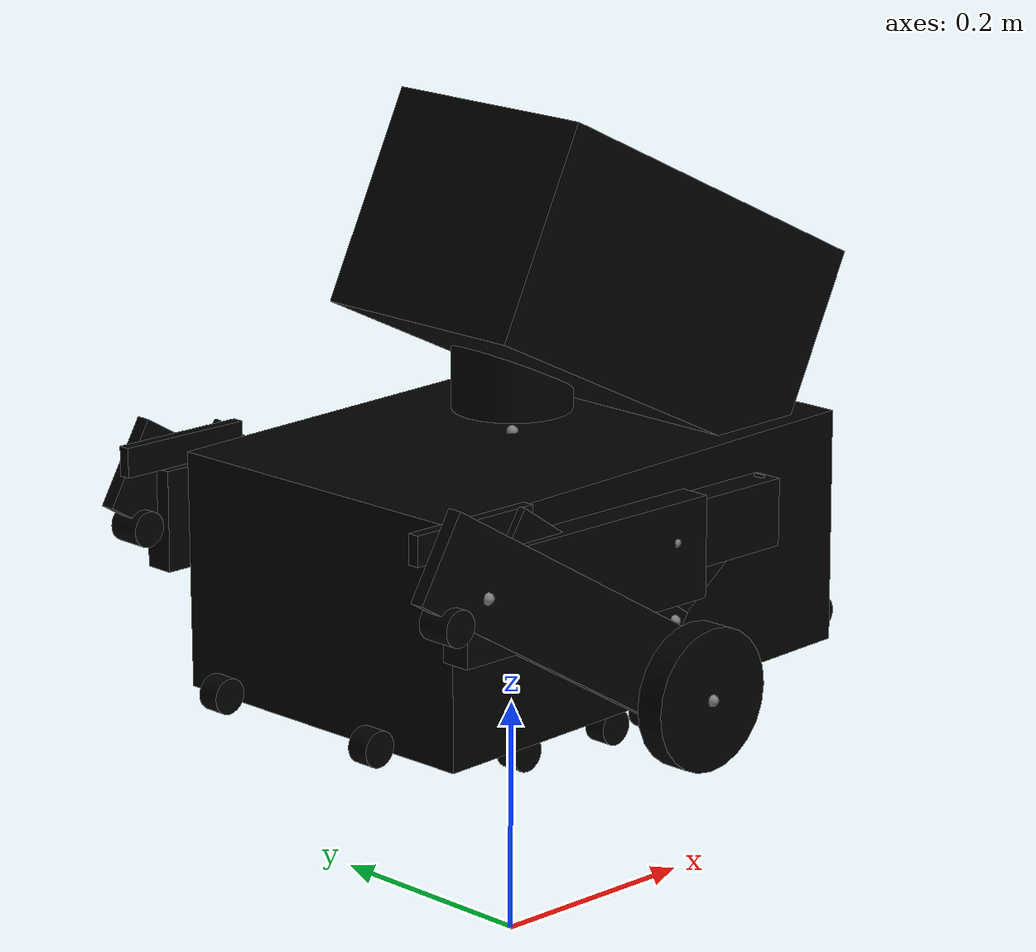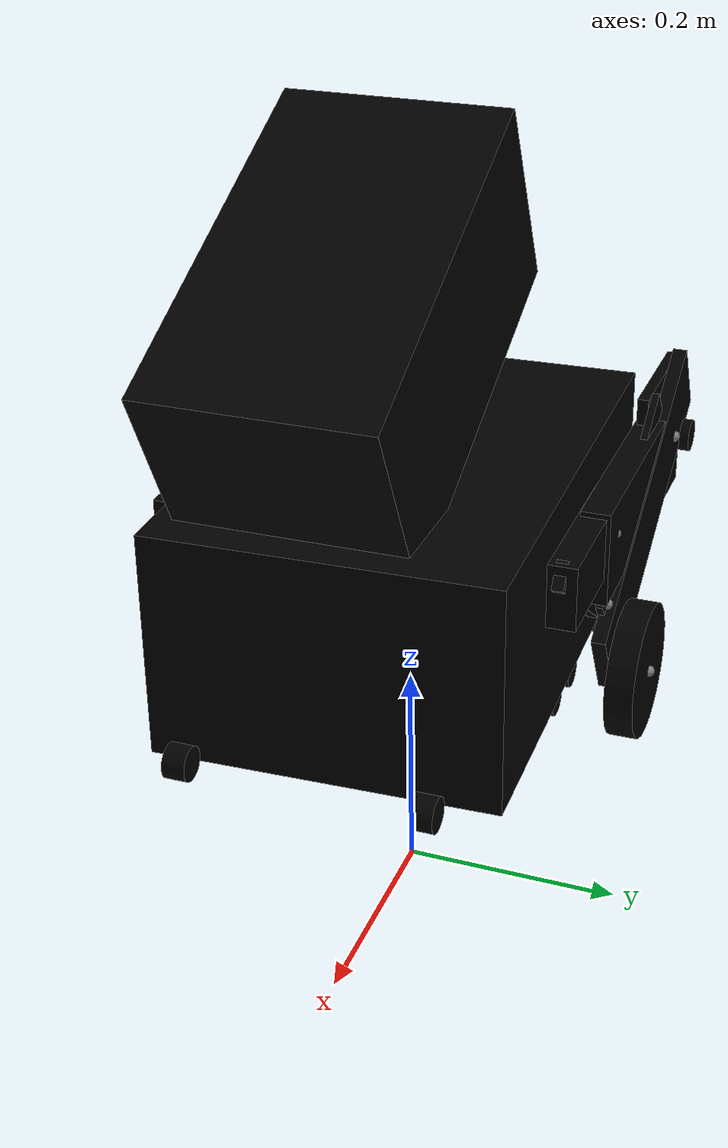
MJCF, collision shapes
<mujoco model="wheelbipeV14_2">
  <!-- Source simulation profile: deterministic midpoints of the source
       startup dynamic-friction ranges for base, wheels and guide rollers. -->
  <default>
    <default class="robot">
      <default class="motor">
        <joint damping="0.01" armature="0.0001" frictionloss="0.0"/>
        <motor />
      </default>
      <default class="visual">
        <geom material="visualgeom" contype="0" conaffinity="0" group="2" />
      </default>
      <default class="collision">
        <geom material="collision_material" condim="3" contype="0" conaffinity="1" priority="1" group="1" solref="0.005 1" solimp="0.99 0.999 1e-05" friction="1 0.01 0.01" />
      </default>
    </default>
  </default>

  <!-- meshdir is also consumed by UniLab's terrain materializer when this
       pure robot description is attached to a generated hfield scene. -->
  <compiler angle="radian" meshdir="../meshes" autolimits="true" />

  <asset>
    <material name="visualgeom" rgba="0.7 0.7 0.7 1" />
    <material name="red" rgba="1 1 1 1" />
    <material name="default_material" rgba="0.7 0.7 0.7 1" />
    <material name="collision_material" rgba="0 0 0 0" />
    <mesh name="base_link.STL" file="../meshes/base_link.STL" />
    <mesh name="gimbal_yaw_link.STL" file="../meshes/gimbal_yaw_link.STL" />
    <mesh name="gimbal_pitch_link.STL" file="../meshes/gimbal_pitch_link.STL" />
    <mesh name="left_front1_link.STL" file="../meshes/left_front1_link.STL" />
    <mesh name="left_front2_link.STL" file="../meshes/left_front2_link.STL" />
    <mesh name="left_front3_link.STL" file="../meshes/left_front3_link.STL" />
    <mesh name="left_front4_link.STL" file="../meshes/left_front4_link.STL" />
    <mesh name="left_rear1_link.STL" file="../meshes/left_rear1_link.STL" />
    <mesh name="left_rear2_link.STL" file="../meshes/left_rear2_link.STL" />
    <mesh name="left_wheel_link.STL" file="../meshes/left_wheel_link.STL" />
    <mesh name="left_spring1_link.STL" file="../meshes/left_spring1_link.STL" />
    <mesh name="left_spring2_link.STL" file="../meshes/left_spring2_link.STL" />
    <mesh name="right_front1_link.STL" file="../meshes/right_front1_link.STL" />
    <mesh name="right_front2_link.STL" file="../meshes/right_front2_link.STL" />
    <mesh name="right_front3_link.STL" file="../meshes/right_front3_link.STL" />
    <mesh name="right_front4_link.STL" file="../meshes/right_front4_link.STL" />
    <mesh name="right_rear1_link.STL" file="../meshes/right_rear1_link.STL" />
    <mesh name="right_rear2_link.STL" file="../meshes/right_rear2_link.STL" />
    <mesh name="right_wheel_link.STL" file="../meshes/right_wheel_link.STL" />
    <mesh name="right_spring1_link.STL" file="../meshes/right_spring1_link.STL" />
    <mesh name="right_spring2_link.STL" file="../meshes/right_spring2_link.STL" />
  </asset>

  <worldbody>
    <body name="base_link" pos="0.00000000 0.00000000 0.38" quat="1 0 0 0" childclass="robot">
      <freejoint name="floating_base" />
      <inertial pos="0.00582119 0.00168176 -0.04109210" mass="15.96301746" fullinertia="0.19890602 0.29839691 0.37398203 -0.00177966 0.00594931 -0.00016768" />
      <geom name="base_link_collision" pos="0.00511110015213 0.00117399997544 -0.045510198921" quat="-0.00240134936757 0.999876547349 0.0140534655443 0.0066048231364" type="box" size="0.22499999404 0.15000000596 0.10000000149" class="collision" friction="0.055 0.01 0.01" />
      <site name="contact_site_base_link" pos="0.00511110015213 0.00117399997544 -0.045510198921" quat="-0.00240134936757 0.999876547349 0.0140534655443 0.0066048231364" type="box" size="0.22499999404 0.15000000596 0.10000000149" rgba="0 0 0 0" />
      <geom name="base_link_visual" pos="0 0 -0.117" quat="1 0 0 0" material="default_material" type="mesh" mesh="base_link.STL" class="visual" />
      <body name="gimbal_yaw_link" pos="0 0 0.05495" quat="1 0 0 0">
        <site name="gimbal_yaw_joint_site" pos="0 0 0" quat="1 0 0 0" />
        <geom name="gimbal_yaw_link_collision" pos="0 0 0.070000000298" quat="1 0 0 0" type="cylinder" size="0.0500000007451 0.0500000007451" class="collision" />
        <site name="contact_site_gimbal_yaw_link" pos="0 0 0.070000000298" quat="1 0 0 0" type="cylinder" size="0.0500000007451 0.0500000007451" rgba="0 0 0 0" />
        <inertial pos="-0.032712 0.039683 0.102088" mass="1.1135894" fullinertia="0.0115811 0.0131184 0.0083629 0.0022103 0.0053499 -0.0031031" />
        <geom name="gimbal_yaw_link_visual" pos="0 0 0" quat="1 0 0 0" material="default_material" type="mesh" mesh="gimbal_yaw_link.STL" class="visual" />
        <body name="gimbal_pitch_link" pos="-0.058485 -0.0553 0.18" quat="1 0 0 0">
          <site name="gimbal_pitch_joint_site" pos="0 0 0" quat="1 0 0 0" />
          <inertial pos="0.077937 0.022206 -0.043928" mass="2.9094813" fullinertia="0.0152198 0.019075 0.0180859 -0.0020655 0.0058831 0.001189" />
          <geom name="gimbal_pitch_link_collision" pos="0.122241601348 0.0276848003268 -0.055365100503" quat="0.974370062351 0 0.224951064887 0" type="box" size="0.17499999702 0.10000000149 0.0912242978811" class="collision" />
          <site name="contact_site_gimbal_pitch_link" pos="0.122241601348 0.0276848003268 -0.055365100503" quat="0.974370062351 0 0.224951064887 0" type="box" size="0.17499999702 0.10000000149 0.0912242978811" rgba="0 0 0 0" />
          <geom name="gimbal_pitch_link_visual" pos="0 0 0" quat="1 0 0 0" material="default_material" type="mesh" mesh="gimbal_pitch_link.STL" class="visual" />
        </body>
      </body>
      <body name="left_front1_link" pos="0 0.1845 0" quat="1 0 0 0">
        <joint name="left_front1_joint" type="hinge" ref="0.0" class="motor" axis="0 1 0" damping="0.0" frictionloss="0.0" armature="0.015795" />
        <site name="left_front1_joint_site" pos="0 0 0" quat="1 0 0 0" />
        <inertial pos="0.02531605 -0.01412400 0.00293202" mass="0.13665924" fullinertia="0.00005570 0.00023381 0.00022127 -0.00003357 -0.00001944 -0.00000389" />
        <geom name="left_front1_link_collision" pos="0.0470402985811 -0.0125000001863 6.40000007479e-06" quat="1 0 0 0" type="box" size="0.0755402967334 0.0125000001863 0.0284599494189" class="collision" />
        <site name="contact_site_left_front1_link" pos="0.0470402985811 -0.0125000001863 6.40000007479e-06" quat="1 0 0 0" type="box" size="0.0755402967334 0.0125000001863 0.0284599494189" rgba="0 0 0 0" />
        <geom name="left_front1_link_visual" pos="0 0 0" quat="1 0 0 0" material="default_material" type="mesh" mesh="left_front1_link.STL" class="visual" />
        <body name="left_front2_link" pos="0.11265 -0.0095 0.013046" quat="1 0 0 0">
          <joint name="left_front2_joint" type="hinge" ref="0.0" class="motor" range="-1 0.1" axis="0 1 0" />
          <site name="left_front2_joint_site" pos="0 0 0" quat="1 0 0 0" />
          <inertial pos="-0.0544 -0.0044715 -0.0399756" quat="0.950204968452 0 -0.311625629663 0" mass="0.0328941" diaginertia="1.42447822782e-06 8.24000017019e-05 8.14755185274e-05" />
          <geom name="left_front2_link_collision" pos="-0.0543931014836 -0.00499999988824 -0.0399704985321" quat="0.671815335751 0.671938318125 -0.220387807429 0.220436534228" type="box" size="0.0798079967499 0.0125171495602 0.00500309979543" class="collision" />
          <site name="contact_site_left_front2_link" pos="-0.0543931014836 -0.00499999988824 -0.0399704985321" quat="0.671815335751 0.671938318125 -0.220387807429 0.220436534228" type="box" size="0.0798079967499 0.0125171495602 0.00500309979543" rgba="0 0 0 0" />
          <geom name="left_front2_link_visual" pos="0 0 0" quat="1 0 0 0" material="default_material" type="mesh" mesh="left_front2_link.STL" class="visual" />
          <body name="left_front3_link" pos="-0.10879 0.0065 -0.079941" quat="1 0 0 0">
            <joint name="left_front3_joint" type="hinge" ref="0.0" class="motor" range="-0.1 1" axis="0 1 0" />
            <site name="left_front3_joint_site" pos="0 0 0" quat="1 0 0 0" />
            <inertial pos="-0.0844609 -0.002949 0.0515978" quat="0.958503782749 0 0.285079836845 0" mass="0.044351" diaginertia="3.15396982842e-06 0.000164299999597 0.000161346019013" />
            <geom name="left_front3_link_collision" pos="-0.0861302986741 -0.00297400006093 0.0506381988525" quat="0.680705428123 -0.67121100005 0.208784772637 0.206215499539" type="box" size="0.110699951649 0.0180859994143 0.00327180000022" class="collision" />
            <site name="contact_site_left_front3_link" pos="-0.0861302986741 -0.00297400006093 0.0506381988525" quat="0.680705428123 -0.67121100005 0.208784772637 0.206215499539" type="box" size="0.110699951649 0.0180859994143 0.00327180000022" rgba="0 0 0 0" />
            <geom name="left_front3_link_visual" pos="0 0 0" quat="1 0 0 0" material="default_material" type="mesh" mesh="left_front3_link.STL" class="visual" />
            <body name="left_front4_link" pos="-0.16505 -0.0065 0.11386" quat="1 0 0 0">
              <joint name="left_front4_joint" type="hinge" ref="0.0" class="motor" range="-2 0.1" axis="0 1 0" />
              <site name="left_front4_joint_site" pos="0 0 0" quat="1 0 0 0" />
              <inertial pos="-0.0483173 -0.0045295 0" quat="1 0 0 0" mass="0.0271098" diaginertia="1.3e-06 3.88e-05 3.79e-05" />
              <geom name="left_front4_link_collision" pos="-0.0483739003539 -0.00499999988824 0" quat="1 0 0 0" type="box" size="0.0607260502875 0.00499999988824 0.0124283498153" class="collision" />
              <site name="contact_site_left_front4_link" pos="-0.0483739003539 -0.00499999988824 0" quat="1 0 0 0" type="box" size="0.0607260502875 0.00499999988824 0.0124283498153" rgba="0 0 0 0" />
              <geom name="left_front4_link_visual" pos="0 0 0" quat="1 0 0 0" material="default_material" type="mesh" mesh="left_front4_link.STL" class="visual" />
            </body>
          </body>
        </body>
      </body>
      <body name="left_rear1_link" pos="0 0.174 0" quat="1 0 0 0">
        <joint name="left_rear1_joint" type="hinge" ref="0.0" class="motor" limited="true" range="-3.14 1" axis="0 1 0" armature="0.015795" damping="0.0" frictionloss="0.0" />
        <site name="left_rear1_joint_site" pos="0 0 0" quat="1 0 0 0" />
        <inertial pos="-0.11878103 -0.00279462 0.00086226" mass="0.38254442" fullinertia="0.00013214 0.00273881 0.00266568 0.00015056 0.00003507 -0.00000111" />
        <geom name="left_rear1_link_collision" pos="-0.0993413999677 0.0010000000475 -0.00973969977349" quat="1 0 0 0" type="box" size="0.132341399789 0.0130000002682 0.0426966995001" class="collision" />
        <site name="contact_site_left_rear1_link" pos="-0.0993413999677 0.0010000000475 -0.00973969977349" quat="1 0 0 0" type="box" size="0.132341399789 0.0130000002682 0.0426966995001" rgba="0 0 0 0" />
        <geom name="left_rear1_link_visual" pos="0 0 0" quat="1 0 0 0" material="default_material" type="mesh" mesh="left_rear1_link.STL" class="visual" />
        <body name="left_rear2_link" pos="-0.21 0.0145 0" quat="1 0 0 0">
          <joint name="left_rear2_joint" type="hinge" ref="0.0" class="motor" range="0 1.2" axis="0 1 0" />
          <site name="left_rear2_joint_site" pos="0 0 0" quat="1 0 0 0" />
          <site name="left_s2r2_rear2_site" pos="0.04758 -0.01405 -0.02292" quat="0.997796329836319 0 0.0663512182644112 0" />
          <inertial pos="0.08464616 -0.00523955 -0.04743407" mass="0.31135718" fullinertia="0.00102346 0.00354846 0.00253867 0.00002545 0.00148132 -0.00001794" />
          <geom name="left_rear2_link_collision" pos="0.0885389968753 -0.00600130017847 -0.0399999991059" quat="0.684954345226 0.678498433009 0.188647251428 -0.186787675956" type="box" size="0.159999996424 0.0391302518547 0.00638655014336" class="collision" />
          <site name="contact_site_left_rear2_link" pos="0.0885389968753 -0.00600130017847 -0.0399999991059" quat="0.684954345226 0.678498433009 0.188647251428 -0.186787675956" type="box" size="0.159999996424 0.0391302518547 0.00638655014336" rgba="0 0 0 0" />
          <geom name="left_rear2_link_visual" pos="0 0 0" quat="1 0 0 0" material="default_material" type="mesh" mesh="left_rear2_link.STL" class="visual" />
          <body name="left_rear2_guide_link" pos="-0.037468 0.0065 -0.014006">
            <joint name="left_rear2_guide_joint" type="hinge" axis="0 1 0" damping="0.01" armature="0.0001" frictionloss="0" />
            <geom name="left_rear2_guide_link_collision" pos="-8.69999985298e-06 -0.0125000001863 0" quat="0.70710682869 0.707106733684 0 0" type="cylinder" size="0.0149999996647 0.0149985002354" class="collision" friction="0.4 0.01 0.01" />
            <site name="contact_site_left_rear2_guide_link" pos="-8.69999985298e-06 -0.0125000001863 0" quat="0.70710682869 0.707106733684 0 0" type="cylinder" size="0.0149999996647 0.0149985002354" rgba="0 0 0 0" />
            <inertial pos="0 -0.0125 0" mass="0.00997679960" diaginertia="0.0000006 0.0000012 0.0000006" />
          </body>
          <body name="left_wheel_link" pos="0.21661 0.03355 -0.12483" quat="1 0 0 0">
            <joint name="left_wheel_joint" type="hinge" ref="0.0" class="motor" axis="0 1 0" damping="0.00" frictionloss="0.0" armature="0.0" />
            <site name="left_wheel_joint_site" pos="0 0 0" quat="1 0 0 0" />
            <inertial pos="0.00015349 -0.02021922 -0.00011469" mass="0.51208444" fullinertia="0.00038955 0.00063306 0.00038893 0.00000081 -0.00000093 -0.00000059" />
            <geom name="left_wheel_link_collision" pos="0 -0.0125000001863 0" quat="0.70710682869 0.707106733684 0 0" type="cylinder" size="0.0599999986589 0.0125000001863" class="collision" friction="0.7 0.01 0.01" />
            <site name="contact_site_left_wheel_link" pos="0 -0.0125000001863 0" quat="0.70710682869 0.707106733684 0 0" type="cylinder" size="0.0599999986589 0.0125000001863" rgba="0 0 0 0" />
            <geom name="left_wheel_link_visual" pos="0 0 0" quat="1 0 0 0" material="default_material" type="mesh" mesh="left_wheel_link.STL" class="visual" />
          </body>
        </body>
        <body name="left_spring1_link" pos="0.0023551 -0.002 -0.044938" quat="1 0 0 0">
          <joint name="left_spring1_joint" type="hinge" ref="0.0" class="motor" range="-0.5 0.1" axis="0 1 0" />
          <site name="left_spring1_joint_site" pos="0 0 0" quat="1 0 0 0" />
          <inertial pos="-0.0452477 -0.005217 0.0060453" quat="0.99512052536 -0.0722433999181 0.0667596012354 0.00770626403391" mass="0.0305218" diaginertia="3.88460250633e-07 1.78025220521e-05 1.77090150828e-05" />
          <geom name="left_spring1_link_visual" pos="0 0 0" quat="1 0 0 0" material="default_material" type="mesh" mesh="left_spring1_link.STL" class="visual" />
          <body name="left_spring2_link" pos="-0.03295 -0.0055 0.0044022" quat="0.997795666274 0 0.0663611962244 0">
            <joint name="left_spring2_joint" type="slide" ref="0.0" class="motor" range="-0.015 0.065" axis="-1 0 0" damping="0" frictionloss="0" />
            <site name="left_spring2_joint_site" pos="0 0 0" quat="1 0 0 0" />
            <site name="left_s2r2_spring2_site" pos="-0.133 0.00795 0.0" quat="1 0 0 0" />
            <inertial pos="-0.0688384 0.0001674 0" quat="1 0 0 0" mass="0.0923989" diaginertia="2.5e-06 0.0001019 0.0001017" />
            <geom name="left_spring2_link_visual" pos="0 0 0" quat="1 0 0 0" material="default_material" type="mesh" mesh="left_spring2_link.STL" class="visual" />
          </body>
        </body>
      </body>
      <body name="right_front1_link" pos="0 -0.1845 0" quat="1 0 0 0">
        <joint name="right_front1_joint" type="hinge" ref="0.0" class="motor" axis="0 1 0" damping="0.0" frictionloss="0.0" armature="0.015795" />
        <site name="right_front1_joint_site" pos="0 0 0" quat="1 0 0 0" />
        <inertial pos="0.02850117 0.01065212 0.00330091" mass="0.12138704" fullinertia="0.00004217 0.00021931 0.00019686 0.00002156 -0.00001816 0.00000250" />
        <geom name="right_front1_link_collision" pos="0.0470402985811 0.0125000001863 6.40000007479e-06" quat="1 0 0 0" type="box" size="0.0755402967334 0.0125000001863 0.0284599494189" class="collision" />
        <site name="contact_site_right_front1_link" pos="0.0470402985811 0.0125000001863 6.40000007479e-06" quat="1 0 0 0" type="box" size="0.0755402967334 0.0125000001863 0.0284599494189" rgba="0 0 0 0" />
        <geom name="right_front1_link_visual" pos="0 0 0" quat="1 0 0 0" material="default_material" type="mesh" mesh="right_front1_link.STL" class="visual" />
        <body name="right_front2_link" pos="0.11265 0.0095 0.013046" quat="1 0 0 0">
          <joint name="right_front2_joint" type="hinge" ref="0.0" class="motor" range="-1 0.1" axis="0 1 0" />
          <site name="right_front2_joint_site" pos="0 0 0" quat="1 0 0 0" />
          <inertial pos="-0.0543861 0.0044715 -0.0399654" quat="0.950204968452 0 -0.311625629663 0" mass="0.0328941" diaginertia="1.42447822782e-06 8.24000017019e-05 8.14755185274e-05" />
          <geom name="right_front2_link_collision" pos="-0.0543931014836 0.00499999988824 -0.0399704985321" quat="-0.671868503094 0.67199642774 0.220225740785 0.220259253497" type="box" size="0.0798079967499 0.0125171495602 0.00500309979543" class="collision" />
          <site name="contact_site_right_front2_link" pos="-0.0543931014836 0.00499999988824 -0.0399704985321" quat="-0.671868503094 0.67199642774 0.220225740785 0.220259253497" type="box" size="0.0798079967499 0.0125171495602 0.00500309979543" rgba="0 0 0 0" />
          <geom name="right_front2_link_visual" pos="0 0 0" quat="1 0 0 0" material="default_material" type="mesh" mesh="right_front2_link.STL" class="visual" />
          <body name="right_front3_link" pos="-0.10879 -0.0065 -0.079941" quat="1 0 0 0">
            <joint name="right_front3_joint" type="hinge" ref="0.0" class="motor" range="-0.1 1" axis="0 1 0" />
            <site name="right_front3_joint_site" pos="0 0 0" quat="1 0 0 0" />
            <inertial pos="-0.0844609 0.002949 0.0515978" quat="0.958503782749 0 0.285079836845 0" mass="0.044351" diaginertia="3.15396982842e-06 0.000164299999597 0.000161346019013" />
            <geom name="right_front3_link_collision" pos="-0.0861992016435 0.00299019995145 0.0505581013858" quat="0.680710494518 0.670812274525 0.209593765905 -0.206675030648" type="box" size="0.110699549317 0.0180026497692 0.0032697499264" class="collision" />
            <site name="contact_site_right_front3_link" pos="-0.0861992016435 0.00299019995145 0.0505581013858" quat="0.680710494518 0.670812274525 0.209593765905 -0.206675030648" type="box" size="0.110699549317 0.0180026497692 0.0032697499264" rgba="0 0 0 0" />
            <geom name="right_front3_link_visual" pos="0 0 0" quat="1 0 0 0" material="default_material" type="mesh" mesh="right_front3_link.STL" class="visual" />
            <body name="right_front4_link" pos="-0.16505 0.0065 0.11386" quat="1 0 0 0">
              <joint name="right_front4_joint" type="hinge" ref="0.0" class="motor" range="-2 0.1" axis="0 1 0" />
              <site name="right_front4_joint_site" pos="0 0 0" quat="1 0 0 0" />
              <inertial pos="-0.0483173 0.0045295 0" quat="1 0 0 0" mass="0.0271098" diaginertia="1.3e-06 3.88e-05 3.79e-05" />
              <geom name="right_front4_link_collision" pos="-0.0483739003539 0.00499999988824 0" quat="1 0 0 0" type="box" size="0.0607260502875 0.00499999988824 0.0124283498153" class="collision" />
              <site name="contact_site_right_front4_link" pos="-0.0483739003539 0.00499999988824 0" quat="1 0 0 0" type="box" size="0.0607260502875 0.00499999988824 0.0124283498153" rgba="0 0 0 0" />
              <geom name="right_front4_link_visual" pos="0 0 0" quat="1 0 0 0" material="default_material" type="mesh" mesh="right_front4_link.STL" class="visual" />
            </body>
          </body>
        </body>
      </body>
      <body name="right_rear1_link" pos="0 -0.174 0" quat="1 0 0 0">
        <joint name="right_rear1_joint" type="hinge" ref="0.0" class="motor" limited="true" range="-3.14 1" axis="0 1 0" armature="0.015795" damping="0.0" frictionloss="0.0" />
        <site name="right_rear1_joint_site" pos="0 0 0" quat="1 0 0 0" />
        <inertial pos="-0.11878102 0.00279462 0.00086226" mass="0.38254442" fullinertia="0.00013214 0.00273881 0.00266568 -0.00015056 0.00003507 0.00000111" />
        <geom name="right_rear1_link_collision" pos="-0.0993413999677 -0.0010000000475 -0.00973969977349" quat="1 0 0 0" type="box" size="0.132341399789 0.0130000002682 0.0426966995001" class="collision" />
        <site name="contact_site_right_rear1_link" pos="-0.0993413999677 -0.0010000000475 -0.00973969977349" quat="1 0 0 0" type="box" size="0.132341399789 0.0130000002682 0.0426966995001" rgba="0 0 0 0" />
        <geom name="right_rear1_link_visual" pos="0 0 0" quat="1 0 0 0" material="default_material" type="mesh" mesh="right_rear1_link.STL" class="visual" />
        <body name="right_rear2_link" pos="-0.21 -0.0145 0" quat="1 0 0 0">
          <joint name="right_rear2_joint" type="hinge" ref="0.0" class="motor" range="0 1.2" axis="0 1 0" />
          <site name="right_rear2_joint_site" pos="0 0 0" quat="1 0 0 0" />
          <site name="right_s2r2_rear2_site" pos="0.04758 0.01405 -0.02292" quat="0.997796329836319 0 0.0663512182644112 0" />
          <inertial pos="0.08401127 0.00545683 -0.04698266" mass="0.30296958" fullinertia="0.00101902 0.00353775 0.00253117 -0.00002700 0.00147745 0.00001904" />
          <geom name="right_rear2_link_collision" pos="0.0885500013828 0.00601539993659 -0.0399999991059" quat="0.683072626591 -0.680699965338 0.187956385176 0.186364538641" type="box" size="0.159999996424 0.0388457514346 0.00632954994217" class="collision" />
          <site name="contact_site_right_rear2_link" pos="0.0885500013828 0.00601539993659 -0.0399999991059" quat="0.683072626591 -0.680699965338 0.187956385176 0.186364538641" type="box" size="0.159999996424 0.0388457514346 0.00632954994217" rgba="0 0 0 0" />
          <geom name="right_rear2_link_visual" pos="0 0 0" quat="1 0 0 0" material="default_material" type="mesh" mesh="right_rear2_link.STL" class="visual" />
          <body name="right_rear2_guide_link" pos="-0.0374678 -0.0065 -0.0140058">
            <joint name="right_rear2_guide_joint" type="hinge" axis="0 1 0" damping="0.01" armature="0.0001" frictionloss="0" />
            <geom name="right_rear2_guide_link_collision" pos="-8.69999985298e-06 0.0125000001863 0" quat="0.70710682869 0.707106733684 0 0" type="cylinder" size="0.0149999996647 0.0149985002354" class="collision" friction="0.4 0.01 0.01" />
            <site name="contact_site_right_rear2_guide_link" pos="-8.69999985298e-06 0.0125000001863 0" quat="0.70710682869 0.707106733684 0 0" type="cylinder" size="0.0149999996647 0.0149985002354" rgba="0 0 0 0" />
            <inertial pos="0 0.0125 0" mass="0.00997679960" diaginertia="0.0000006 0.0000012 0.0000006" />
          </body>
          <body name="right_wheel_link" pos="0.21661 -0.03355 -0.12483" quat="1 0 0 0">
            <joint name="right_wheel_joint" type="hinge" ref="0.0" class="motor" axis="0 1 0" damping="0.00" frictionloss="0.0" armature="0.0" />
            <site name="right_wheel_joint_site" pos="0 0 0" quat="1 0 0 0" />
            <inertial pos="0.00017786 0.02021922 -0.00007128" mass="0.51208444" fullinertia="0.00038992 0.00063306 0.00038855 -0.00000092 -0.00000070 0.00000038" />
            <geom name="right_wheel_link_collision" pos="0 0.0125000001863 0" quat="0.70710682869 0.707106733684 0 0" type="cylinder" size="0.0599999986589 0.0125000001863" class="collision" friction="0.7 0.01 0.01" />
            <site name="contact_site_right_wheel_link" pos="0 0.0125000001863 0" quat="0.70710682869 0.707106733684 0 0" type="cylinder" size="0.0599999986589 0.0125000001863" rgba="0 0 0 0" />
            <geom name="right_wheel_link_visual" pos="0 0 0" quat="1 0 0 0" material="default_material" type="mesh" mesh="right_wheel_link.STL" class="visual" />
          </body>
        </body>
        <body name="right_spring1_link" pos="0.0023551 0.00195 -0.0449383" quat="1 0 0 0">
          <joint name="right_spring1_joint" type="hinge" ref="0.0" class="motor" range="-0.5 0.1" axis="0 1 0" />
          <site name="right_spring1_joint_site" pos="0 0 0" quat="1 0 0 0" />
          <inertial pos="-0.0452477 0.005217 0.0060453" quat="0.99512052536 0.0722433999181 0.0667596012354 -0.00770626403391" mass="0.0305218" diaginertia="3.88460250633e-07 1.78025220521e-05 1.77090150828e-05" />
          <geom name="right_spring1_link_visual" pos="0 0 0" quat="1 0 0 0" material="default_material" type="mesh" mesh="right_spring1_link.STL" class="visual" />
          <body name="right_spring2_link" pos="-0.03295 0.0055 0.0044022" quat="0.997795666274 0 0.0663611962244 0">
            <joint name="right_spring2_joint" type="slide" ref="0.0" class="motor" range="-0.015 0.065" axis="-1 0 0" damping="0" frictionloss="0" />
            <site name="right_spring2_joint_site" pos="0 0 0" quat="1 0 0 0" />
            <site name="right_s2r2_spring2_site" pos="-0.133 -0.00795 0.0" quat="1 0 0 0" />
            <inertial pos="-0.0688384 -0.0001674 0" quat="1 0 0 0" mass="0.0923989" diaginertia="2.5e-06 0.0001019 0.0001017" />
            <geom name="right_spring2_link_visual" pos="0 0 0" quat="1 0 0 0" material="default_material" type="mesh" mesh="right_spring2_link.STL" class="visual" />
          </body>
        </body>
      </body>
      <body name="left_bottom1_guide_link" pos="0.125 -0.146 -0.156996">
        <joint name="left_bottom1_guide_joint" type="hinge" axis="0 1 0" damping="0.01" armature="0.0001" frictionloss="0" />
        <geom name="left_bottom1_guide_link_collision" pos="0 0.280000001192 0" quat="0.70710682869 -0.707106733684 0 0" type="cylinder" size="0.0149999996647 0.00999999977648" class="collision" friction="0.4 0.01 0.01" />
        <site name="contact_site_left_bottom1_guide_link" pos="0 0.280000001192 0" quat="0.70710682869 -0.707106733684 0 0" type="cylinder" size="0.0149999996647 0.00999999977648" rgba="0 0 0 0" />
        <inertial pos="0 0.283 -0.0000043" mass="0.01281149965" diaginertia="0.0000011 0.0000016 0.0000011" />
      </body>
      <body name="left_bottom2_guide_link" pos="0.025 0.146 -0.158999995">
        <joint name="left_bottom2_guide_joint" type="hinge" axis="0 1 0" damping="0.01" armature="0.0001" frictionloss="0" />
        <geom name="left_bottom2_guide_link_collision" pos="0 -0.00999999977648 0" quat="0.70710682869 -0.707106733684 0 0" type="cylinder" size="0.0149999996647 0.00999999977648" class="collision" friction="0.4 0.01 0.01" />
        <site name="contact_site_left_bottom2_guide_link" pos="0 -0.00999999977648 0" quat="0.70710682869 -0.707106733684 0 0" type="cylinder" size="0.0149999996647 0.00999999977648" rgba="0 0 0 0" />
        <inertial pos="0 -0.009 0" mass="0.01281149965" diaginertia="0.0000011 0.0000016 0.0000011" />
      </body>
      <body name="left_bottom3_guide_link" pos="-0.025 0.146 -0.158999995">
        <joint name="left_bottom3_guide_joint" type="hinge" axis="0 1 0" damping="0.01" armature="0.0001" frictionloss="0" />
        <geom name="left_bottom3_guide_link_collision" pos="0 -0.00999999977648 0" quat="0.70710682869 -0.707106733684 0 0" type="cylinder" size="0.0149999996647 0.00999999977648" class="collision" friction="0.4 0.01 0.01" />
        <site name="contact_site_left_bottom3_guide_link" pos="0 -0.00999999977648 0" quat="0.70710682869 -0.707106733684 0 0" type="cylinder" size="0.0149999996647 0.00999999977648" rgba="0 0 0 0" />
        <inertial pos="0 -0.009 0" mass="0.01281149965" diaginertia="0.0000011 0.0000016 0.0000011" />
      </body>
      <body name="left_bottom4_guide_link" pos="-0.125 0.146 -0.157">
        <joint name="left_bottom4_guide_joint" type="hinge" axis="0 1 0" damping="0.01" armature="0.0001" frictionloss="0" />
        <geom name="left_bottom4_guide_link_collision" pos="0 -0.00999999977648 0" quat="0.70710682869 -0.707106733684 0 0" type="cylinder" size="0.0149999996647 0.00999999977648" class="collision" friction="0.4 0.01 0.01" />
        <site name="contact_site_left_bottom4_guide_link" pos="0 -0.00999999977648 0" quat="0.70710682869 -0.707106733684 0 0" type="cylinder" size="0.0149999996647 0.00999999977648" rgba="0 0 0 0" />
        <inertial pos="0 -0.009 0" mass="0.01281149965" diaginertia="0.0000011 0.0000016 0.0000011" />
      </body>
      <body name="left_front1_guide_link" pos="0.18571 0.115 -0.143725">
        <joint name="left_front1_guide_joint" type="hinge" axis="0 1 0" damping="0.01" armature="0.0001" frictionloss="0" />
        <geom name="left_front1_guide_link_collision" pos="0 -0.00999999977648 0" quat="0.70710682869 -0.707106733684 0 0" type="cylinder" size="0.0149999996647 0.00999999977648" class="collision" friction="0.4 0.01 0.01" />
        <site name="contact_site_left_front1_guide_link" pos="0 -0.00999999977648 0" quat="0.70710682869 -0.707106733684 0 0" type="cylinder" size="0.0149999996647 0.00999999977648" rgba="0 0 0 0" />
        <inertial pos="0 -0.009 0" mass="0.01281149965" diaginertia="0.0000011 0.0000016 0.0000011" />
      </body>
      <body name="left_front_guide_link" pos="0.25549 0.115 -0.132">
        <joint name="left_front_guide_joint" type="hinge" axis="0 1 0" damping="0.01" armature="0.0001" frictionloss="0" />
        <geom name="left_front_guide_link_collision" pos="0 -0.00999999977648 0" quat="0.70710682869 -0.707106733684 0 0" type="cylinder" size="0.0149999996647 0.00999999977648" class="collision" friction="0.4 0.01 0.01" />
        <site name="contact_site_left_front_guide_link" pos="0 -0.00999999977648 0" quat="0.70710682869 -0.707106733684 0 0" type="cylinder" size="0.0149999996647 0.00999999977648" rgba="0 0 0 0" />
        <inertial pos="0 -0.009 0" mass="0.01281149965" diaginertia="0.0000011 0.0000016 0.0000011" />
      </body>
      <body name="left_rear_guide_link" pos="-0.24047 0.099 -0.137">
        <joint name="left_rear_guide_joint" type="hinge" axis="0 1 0" damping="0.01" armature="0.0001" frictionloss="0" />
        <geom name="left_rear_guide_link_collision" pos="0 -0.00999999977648 0" quat="0.70710682869 -0.707106733684 0 0" type="cylinder" size="0.0149999996647 0.00999999977648" class="collision" friction="0.4 0.01 0.01" />
        <site name="contact_site_left_rear_guide_link" pos="0 -0.00999999977648 0" quat="0.70710682869 -0.707106733684 0 0" type="cylinder" size="0.0149999996647 0.00999999977648" rgba="0 0 0 0" />
        <inertial pos="0 -0.009 0" mass="0.01281149965" diaginertia="0.0000011 0.0000016 0.0000011" />
      </body>
      <body name="right_bottom1_guide_link" pos="0.125 -0.146 -0.156996">
        <joint name="right_bottom1_guide_joint" type="hinge" axis="0 1 0" damping="0.01" armature="0.0001" frictionloss="0" />
        <geom name="right_bottom1_guide_link_collision" pos="0 0.00999999977648 0" quat="0.70710682869 -0.707106733684 0 0" type="cylinder" size="0.0149999996647 0.00999999977648" class="collision" friction="0.4 0.01 0.01" />
        <site name="contact_site_right_bottom1_guide_link" pos="0 0.00999999977648 0" quat="0.70710682869 -0.707106733684 0 0" type="cylinder" size="0.0149999996647 0.00999999977648" rgba="0 0 0 0" />
        <inertial pos="0 0.009 0" mass="0.01281149965" diaginertia="0.0000011 0.0000016 0.0000011" />
      </body>
      <body name="right_bottom2_guide_link" pos="0.025 -0.146 -0.158996">
        <joint name="right_bottom2_guide_joint" type="hinge" axis="0 1 0" damping="0.01" armature="0.0001" frictionloss="0" />
        <geom name="right_bottom2_guide_link_collision" pos="0 0.00999999977648 0" quat="0.70710682869 -0.707106733684 0 0" type="cylinder" size="0.0149999996647 0.00999999977648" class="collision" friction="0.4 0.01 0.01" />
        <site name="contact_site_right_bottom2_guide_link" pos="0 0.00999999977648 0" quat="0.70710682869 -0.707106733684 0 0" type="cylinder" size="0.0149999996647 0.00999999977648" rgba="0 0 0 0" />
        <inertial pos="0 0.009 0" mass="0.01281149965" diaginertia="0.0000011 0.0000016 0.0000011" />
      </body>
      <body name="right_bottom3_guide_link" pos="-0.025 -0.146 -0.158996">
        <joint name="right_bottom3_guide_joint" type="hinge" axis="0 1 0" damping="0.01" armature="0.0001" frictionloss="0" />
        <geom name="right_bottom3_guide_link_collision" pos="0 0.00999999977648 0" quat="0.70710682869 -0.707106733684 0 0" type="cylinder" size="0.0149999996647 0.00999999977648" class="collision" friction="0.4 0.01 0.01" />
        <site name="contact_site_right_bottom3_guide_link" pos="0 0.00999999977648 0" quat="0.70710682869 -0.707106733684 0 0" type="cylinder" size="0.0149999996647 0.00999999977648" rgba="0 0 0 0" />
        <inertial pos="0 0.009 0" mass="0.01281149965" diaginertia="0.0000011 0.0000016 0.0000011" />
      </body>
      <body name="right_bottom4_guide_link" pos="-0.125 -0.146 -0.156996">
        <joint name="right_bottom4_guide_joint" type="hinge" axis="0 1 0" damping="0.01" armature="0.0001" frictionloss="0" />
        <geom name="right_bottom4_guide_link_collision" pos="0 0.00999999977648 0" quat="0.70710682869 -0.707106733684 0 0" type="cylinder" size="0.0149999996647 0.00999999977648" class="collision" friction="0.4 0.01 0.01" />
        <site name="contact_site_right_bottom4_guide_link" pos="0 0.00999999977648 0" quat="0.70710682869 -0.707106733684 0 0" type="cylinder" size="0.0149999996647 0.00999999977648" rgba="0 0 0 0" />
        <inertial pos="0 0.009 0" mass="0.01281149965" diaginertia="0.0000011 0.0000016 0.0000011" />
      </body>
      <body name="right_front1_guide_link" pos="0.18571 -0.115 -0.143725">
        <joint name="right_front1_guide_joint" type="hinge" axis="0 1 0" damping="0.01" armature="0.0001" frictionloss="0" />
        <geom name="right_front1_guide_link_collision" pos="0 0.00999999977648 0" quat="0.70710682869 -0.707106733684 0 0" type="cylinder" size="0.0149999996647 0.00999999977648" class="collision" friction="0.4 0.01 0.01" />
        <site name="contact_site_right_front1_guide_link" pos="0 0.00999999977648 0" quat="0.70710682869 -0.707106733684 0 0" type="cylinder" size="0.0149999996647 0.00999999977648" rgba="0 0 0 0" />
        <inertial pos="0 0.009 0" mass="0.01281149965" diaginertia="0.0000011 0.0000016 0.0000011" />
      </body>
      <body name="right_front_guide_link" pos="0.25549 -0.115 -0.132">
        <joint name="right_front_guide_joint" type="hinge" axis="0 1 0" damping="0.01" armature="0.0001" frictionloss="0" />
        <geom name="right_front_guide_link_collision" pos="0 0.00999999977648 0" quat="0.70710682869 -0.707106733684 0 0" type="cylinder" size="0.0149999996647 0.00999999977648" class="collision" friction="0.4 0.01 0.01" />
        <site name="contact_site_right_front_guide_link" pos="0 0.00999999977648 0" quat="0.70710682869 -0.707106733684 0 0" type="cylinder" size="0.0149999996647 0.00999999977648" rgba="0 0 0 0" />
        <inertial pos="0 0.009 0" mass="0.01281149965" diaginertia="0.0000011 0.0000016 0.0000011" />
      </body>
      <body name="right_rear_guide_link" pos="-0.24047 -0.099 -0.137">
        <joint name="right_rear_guide_joint" type="hinge" axis="0 1 0" damping="0.01" armature="0.0001" frictionloss="0" />
        <geom name="right_rear_guide_link_collision" pos="0 0.00999999977648 0" quat="0.70710682869 -0.707106733684 0 0" type="cylinder" size="0.0149999996647 0.00999999977648" class="collision" friction="0.4 0.01 0.01" />
        <site name="contact_site_right_rear_guide_link" pos="0 0.00999999977648 0" quat="0.70710682869 -0.707106733684 0 0" type="cylinder" size="0.0149999996647 0.00999999977648" rgba="0 0 0 0" />
        <inertial pos="0 0.009 0" mass="0.01281149965" diaginertia="0.0000011 0.0000016 0.0000011" />
      </body>
      <site name="base_link_site" pos="0 0 0" quat="1 0 0 0" />
    </body>
  </worldbody>

  <actuator>
    <!-- Explicit ctrlrange keeps the SimBackend control contract meaningful;
         the source ROS model only declared forcerange, which reports [0, 0]
         through MuJoCo's ctrlrange API. -->
    <motor name="left_front1_joint_ctrl" joint="left_front1_joint" class="motor" ctrllimited="true" ctrlrange="-54 54" forcelimited="true" forcerange="-54 54" />
    <motor name="left_rear1_joint_ctrl" joint="left_rear1_joint" class="motor" ctrllimited="true" ctrlrange="-54 54" forcelimited="true" forcerange="-54 54" />
    <motor name="left_wheel_joint_ctrl" joint="left_wheel_joint" class="motor" ctrllimited="true" ctrlrange="-5 5" forcelimited="true" forcerange="-5 5" />
    <motor name="left_spring2_joint_ctrl" joint="left_spring2_joint" class="motor" ctrllimited="true" ctrlrange="-1000 1000" forcelimited="true" forcerange="-1000 1000" />
    <motor name="right_front1_joint_ctrl" joint="right_front1_joint" class="motor" ctrllimited="true" ctrlrange="-54 54" forcelimited="true" forcerange="-54 54" />
    <motor name="right_rear1_joint_ctrl" joint="right_rear1_joint" class="motor" ctrllimited="true" ctrlrange="-54 54" forcelimited="true" forcerange="-54 54" />
    <motor name="right_wheel_joint_ctrl" joint="right_wheel_joint" class="motor" ctrllimited="true" ctrlrange="-5 5" forcelimited="true" forcerange="-5 5" />
    <motor name="right_spring2_joint_ctrl" joint="right_spring2_joint" class="motor" ctrllimited="true" ctrlrange="-1000 1000" forcelimited="true" forcerange="-1000 1000" />
  </actuator>

  <equality>
    <connect body1="left_front4_link" body2="left_rear2_link" anchor="-0.0966 0 0" solref="0.001 1" solimp="0.99 0.99 0.01 0.5 2" />
    <connect body1="left_front3_link" body2="left_rear1_link" anchor="-0.11726 -0.0075 0.06689" solref="0.001 1" solimp="0.99 0.99 0.01 0.5 2" />
    <connect body1="left_spring2_link" body2="left_rear2_link" anchor="-0.133 0.00795 0" solref="0.001 1" solimp="0.99 0.99 0.01 0.5 2" />
    <connect body1="right_front4_link" body2="right_rear2_link" anchor="-0.0966 0 0" solref="0.001 1" solimp="0.99 0.99 0.01 0.5 2" />
    <connect body1="right_front3_link" body2="right_rear1_link" anchor="-0.11726 0.0075 0.06689" solref="0.001 1" solimp="0.99 0.99 0.01 0.5 2" />
    <connect body1="right_spring2_link" body2="right_rear2_link" anchor="-0.133 -0.00795 0" solref="0.001 1" solimp="0.99 0.99 0.01 0.5 2" />
  </equality>

  <contact>
    <exclude body1="base_link" body2="left_front1_link" />
    <exclude body1="base_link" body2="left_rear1_link" />
    <exclude body1="base_link" body2="gimbal_yaw_link" />
    <exclude body1="gimbal_yaw_link" body2="gimbal_pitch_link" />
    <exclude body1="left_rear1_link" body2="left_rear2_link" />
    <exclude body1="left_rear2_link" body2="left_wheel_link" />
    <exclude body1="left_rear1_link" body2="left_spring1_link" />
    <exclude body1="left_spring1_link" body2="left_spring2_link" />
    <exclude body1="base_link" body2="right_front1_link" />
    <exclude body1="base_link" body2="right_rear1_link" />
    <exclude body1="right_rear1_link" body2="right_rear2_link" />
    <exclude body1="right_rear2_link" body2="right_wheel_link" />
    <exclude body1="right_rear1_link" body2="right_spring1_link" />
    <exclude body1="right_spring1_link" body2="right_spring2_link" />
    <exclude body1="left_front1_link" body2="left_front2_link" />
    <exclude body1="left_front2_link" body2="left_front3_link" />
    <exclude body1="left_front3_link" body2="left_front4_link" />
    <exclude body1="left_front4_link" body2="left_rear2_link" />
    <exclude body1="left_front3_link" body2="left_rear1_link" />
    <exclude body1="left_spring2_link" body2="left_rear2_link" />
    <exclude body1="right_front4_link" body2="right_rear2_link" />
    <exclude body1="right_front3_link" body2="right_rear1_link" />
    <exclude body1="right_spring2_link" body2="right_rear2_link" />
  </contact>

  <sensor>
    <framequat name="imu" objtype="site" objname="base_link_site" />
    <gyro name="gyro" site="base_link_site" />
    <accelerometer name="accelerometer" site="base_link_site" />
    <velocimeter name="local_linvel" site="base_link_site" />
    <framezaxis name="upvector" objtype="site" objname="base_link_site" />
    <touch name="contact_force_base_link" site="contact_site_base_link" />
    <touch name="contact_force_gimbal_yaw_link" site="contact_site_gimbal_yaw_link" />
    <touch name="contact_force_gimbal_pitch_link" site="contact_site_gimbal_pitch_link" />
    <touch name="contact_force_left_rear2_guide_link" site="contact_site_left_rear2_guide_link" />
    <touch name="contact_force_left_bottom1_guide_link" site="contact_site_left_bottom1_guide_link" />
    <touch name="contact_force_left_bottom2_guide_link" site="contact_site_left_bottom2_guide_link" />
    <touch name="contact_force_left_bottom3_guide_link" site="contact_site_left_bottom3_guide_link" />
    <touch name="contact_force_left_bottom4_guide_link" site="contact_site_left_bottom4_guide_link" />
    <touch name="contact_force_left_front1_guide_link" site="contact_site_left_front1_guide_link" />
    <touch name="contact_force_left_front_guide_link" site="contact_site_left_front_guide_link" />
    <touch name="contact_force_left_rear_guide_link" site="contact_site_left_rear_guide_link" />
    <touch name="contact_force_right_rear2_guide_link" site="contact_site_right_rear2_guide_link" />
    <touch name="contact_force_right_bottom1_guide_link" site="contact_site_right_bottom1_guide_link" />
    <touch name="contact_force_right_bottom2_guide_link" site="contact_site_right_bottom2_guide_link" />
    <touch name="contact_force_right_bottom3_guide_link" site="contact_site_right_bottom3_guide_link" />
    <touch name="contact_force_right_bottom4_guide_link" site="contact_site_right_bottom4_guide_link" />
    <touch name="contact_force_right_front1_guide_link" site="contact_site_right_front1_guide_link" />
    <touch name="contact_force_right_front_guide_link" site="contact_site_right_front_guide_link" />
    <touch name="contact_force_right_rear_guide_link" site="contact_site_right_rear_guide_link" />
    <touch name="contact_force_left_front1_link" site="contact_site_left_front1_link" />
    <touch name="contact_force_left_front2_link" site="contact_site_left_front2_link" />
    <touch name="contact_force_left_front3_link" site="contact_site_left_front3_link" />
    <touch name="contact_force_left_front4_link" site="contact_site_left_front4_link" />
    <touch name="contact_force_left_rear1_link" site="contact_site_left_rear1_link" />
    <touch name="contact_force_left_rear2_link" site="contact_site_left_rear2_link" />
    <touch name="contact_force_left_wheel_link" site="contact_site_left_wheel_link" />
    <touch name="contact_force_right_front1_link" site="contact_site_right_front1_link" />
    <touch name="contact_force_right_front2_link" site="contact_site_right_front2_link" />
    <touch name="contact_force_right_front3_link" site="contact_site_right_front3_link" />
    <touch name="contact_force_right_front4_link" site="contact_site_right_front4_link" />
    <touch name="contact_force_right_rear1_link" site="contact_site_right_rear1_link" />
    <touch name="contact_force_right_rear2_link" site="contact_site_right_rear2_link" />
    <touch name="contact_force_right_wheel_link" site="contact_site_right_wheel_link" />
  </sensor>
</mujoco>
